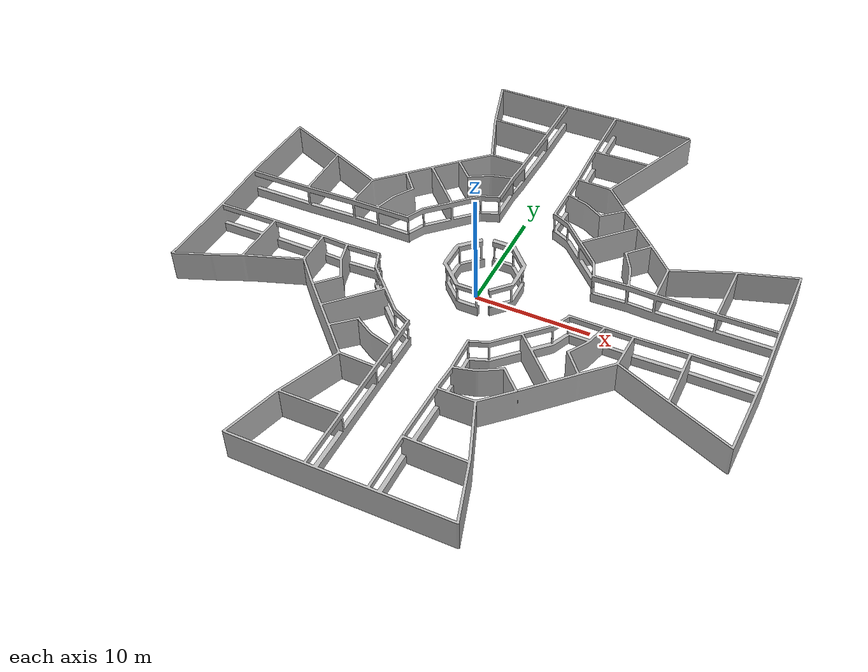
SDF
<?xml version="1.0" ?>
<sdf version="1.5">
  <model name="arena_hawker_centre_walls">
    <pose>0 0 0 0 0 0</pose>
    <static>true</static>
    <link name="body">
      <visual name="visual">
        <geometry>
          <mesh><uri>model://arena_hawker_centre_walls/media/arena_hawker_centre_walls.dae</uri></mesh>
        </geometry>
	      <material>
          <script>
            <uri>model://arena_hawker_centre_walls/media/scripts</uri>
            <uri>model://arena_hawker_centre_walls/media/Textures</uri>
            <name>arena_hawker_centre_walls</name>
          </script>
        </material>
      </visual>
      <collision name="collision">
        <geometry>
          <mesh><uri>model://arena_hawker_centre_walls/media/arena_hawker_centre_walls.dae</uri></mesh>
        </geometry>
      </collision>
    </link>
  </model>
</sdf>
